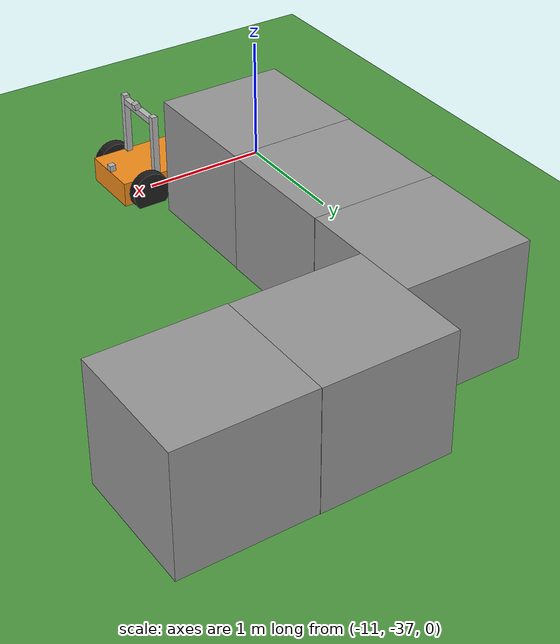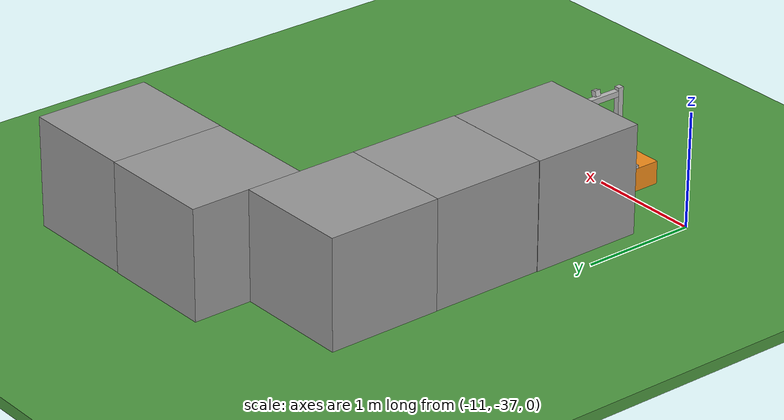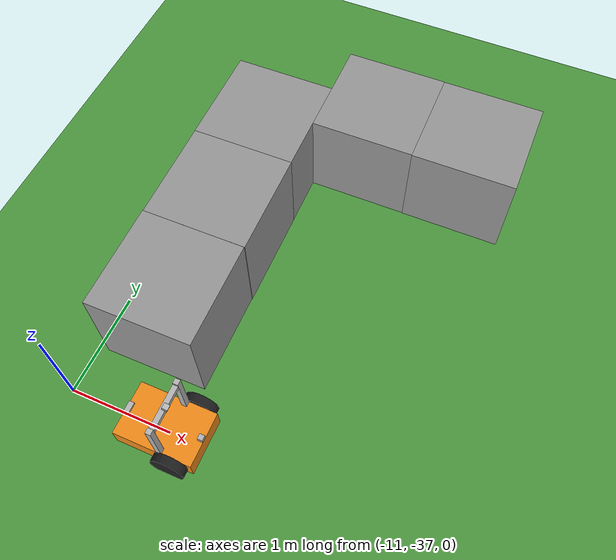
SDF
<sdf version="1.6">
 <world name="IGVC_Advanced_Course">
  <light name="sun" type="directional">
   <pose>0 0 10 0 -0 0</pose>
   <diffuse>0.8 0.8 0.8 1</diffuse>
   <specular>0.2 0.2 0.2 1</specular>
   <attenuation>
    <range>1000</range>
    <constant>0.9</constant>
    <linear>0.01</linear>
    <quadratic>0.001</quadratic>
   </attenuation>
   <direction>-0.5 0.1 -0.9</direction>
  </light>
  <physics name="default_physics" default="0" type="ode">
   <max_step_size>0.001</max_step_size>
   <real_time_factor>1</real_time_factor>
   <real_time_update_rate>1000</real_time_update_rate>
  </physics>
  <scene><ambient>0.4 0.4 0.4 1</ambient><background>0.7 0.7 0.7 1</background><shadows>1</shadows></scene>
  <model name="grasso">
   <static>1</static>
   <link name="link">
    <collision name="collision">
     <max_contacts>4</max_contacts>
     <geometry><plane><normal>0 0 1</normal><size>100 100</size></plane></geometry>
     <surface><friction><ode><mu>100000</mu><mu2>0.7</mu2></ode></friction></surface>
    </collision>
    <visual name="visual">
     <cast_shadows>0</cast_shadows>
     <geometry><plane><normal>0 0 1</normal><size>100 100</size></plane></geometry>
     <material>
      <script>
       <uri>model://grassN/materials/scripts</uri>
       <uri>model://grassN/materials/textures</uri>
       <name>igvc/grass</name>
      </script>
     </material>
    </visual>
   </link>
   <pose>14.1106 -0.146449 0 0 -0 0</pose>
  </model>
  <gravity>0 0 -9.8</gravity>
  <magnetic_field>6e-06 2.3e-05 -4.2e-05</magnetic_field>
  <atmosphere type="adiabatic"/>
  <spherical_coordinates>
   <surface_model>EARTH_WGS84</surface_model>
   <latitude_deg>0</latitude_deg>
   <longitude_deg>0</longitude_deg>
   <elevation>0</elevation>
   <heading_deg>0</heading_deg>
  </spherical_coordinates>
  <model name="grasso">
   <static>1</static>
   <link name="link">
    <collision name="collision">
     <max_contacts>4</max_contacts>
     <geometry><plane><normal>0 0 1</normal><size>100 100</size></plane></geometry>
     <surface><friction><ode><mu>100000</mu><mu2>0.7</mu2></ode></friction></surface>
    </collision>
    <visual name="visual">
     <cast_shadows>0</cast_shadows>
     <geometry><plane><normal>0 0 1</normal><size>100 100</size></plane></geometry>
     <material>
      <script>
       <uri>model://grassN/materials/scripts</uri>
       <uri>model://grassN/materials/textures</uri>
       <name>igvc/grass</name>
      </script>
     </material>
    </visual>
   </link>
   <pose>14.1106 -0.146449 0 0 -0 0</pose>
  </model>
  <audio><device>default</device></audio>
  <model name="ugvbot">
   <link name="footprint">
    <inertial>
     <pose>-0.009261 -0 0.187905 0 -0 0</pose>
     <mass>11.23</mass>
     <inertia>
      <ixx>0.43735</ixx>
      <ixy>2.48971e-19</ixy>
      <ixz>-0.0459209</ixz>
      <iyy>0.741463</iyy>
      <iyz>9.75641e-18</iyz>
      <izz>0.5682</izz>
     </inertia>
    </inertial>
    <collision name="footprint_fixed_joint_lump__chassis_collision">
     <pose>0 0 0.16 0 -0 0</pose>
     <geometry><box><size>0.75 0.5 0.2</size></box></geometry>
    </collision>
    <collision name="footprint_fixed_joint_lump__caster_wheel_collision_1">
     <pose>-0.315 0 0.06 0 -0 0</pose>
     <geometry><sphere><radius>0.06</radius></sphere></geometry>
     <surface>
      <contact><ode><kp>1e+08</kp><kd>0.01</kd></ode></contact>
      <friction><ode><mu>0</mu><mu2>0</mu2></ode></friction>
     </surface>
    </collision>
    <collision name="footprint_fixed_joint_lump__imu_collision_2">
     <pose>-0.35 0 0.2725 0 -0 0</pose>
     <geometry><box><size>0.05 0.1 0.025</size></box></geometry>
    </collision>
    <collision name="footprint_fixed_joint_lump__laser_collision_3">
     <pose>0.35 0 0.285 0 -0 0</pose>
     <geometry><box><size>0.05 0.05 0.05</size></box></geometry>
    </collision>
    <collision name="footprint_fixed_joint_lump__left_mast_collision_4">
     <pose>0.075 0.225 0.51 0 -0 0</pose>
     <geometry><box><size>0.05 0.05 0.5</size></box></geometry>
    </collision>
    <collision name="footprint_fixed_joint_lump__right_mast_collision_5">
     <pose>0.075 -0.225 0.51 0 -0 0</pose>
     <geometry><box><size>0.05 0.05 0.5</size></box></geometry>
    </collision>
    <collision name="footprint_fixed_joint_lump__mast_link_collision_6">
     <pose>0.075 -0 0.711 0 -0 0</pose>
     <geometry><box><size>0.05 0.4 0.05</size></box></geometry>
    </collision>
    <collision name="footprint_fixed_joint_lump__camera_collision_7">
     <pose>0.1 -0 0.76 0 0.261799 0</pose>
     <geometry><box><size>0.05 0.05 0.05</size></box></geometry>
    </collision>
    <visual name="footprint_fixed_joint_lump__chassis_visual">
     <pose>0 0 0.16 0 -0 0</pose>
     <geometry><box><size>0.75 0.5 0.2</size></box></geometry>
     <material>
      <script><name>Gazebo/Orange</name><uri>file://media/materials/scripts/gazebo.material</uri></script>
     </material>
    </visual>
    <visual name="footprint_fixed_joint_lump__caster_wheel_visual_1">
     <pose>-0.315 0 0.06 0 -0 0</pose>
     <geometry><sphere><radius>0.06</radius></sphere></geometry>
     <material>
      <script><name>Gazebo/Grey</name><uri>file://media/materials/scripts/gazebo.material</uri></script>
     </material>
    </visual>
    <visual name="footprint_fixed_joint_lump__imu_visual_2">
     <pose>-0.35 0 0.2725 0 -0 0</pose>
     <geometry><box><size>0.05 0.1 0.025</size></box></geometry>
     <material><script><uri>__default__</uri><name>__default__</name></script></material>
    </visual>
    <visual name="footprint_fixed_joint_lump__laser_visual_3">
     <pose>0.35 0 0.285 0 -0 0</pose>
     <geometry><box><size>0.05 0.05 0.05</size></box></geometry>
     <material><script><uri>__default__</uri><name>__default__</name></script></material>
    </visual>
    <visual name="footprint_fixed_joint_lump__left_mast_visual_4">
     <pose>0.075 0.225 0.51 0 -0 0</pose>
     <geometry><box><size>0.05 0.05 0.5</size></box></geometry>
    </visual>
    <visual name="footprint_fixed_joint_lump__right_mast_visual_5">
     <pose>0.075 -0.225 0.51 0 -0 0</pose>
     <geometry><box><size>0.05 0.05 0.5</size></box></geometry>
    </visual>
    <visual name="footprint_fixed_joint_lump__mast_link_visual_6">
     <pose>0.075 -0 0.71 0 -0 0</pose>
     <geometry><box><size>0.05 0.4 0.05</size></box></geometry>
    </visual>
    <visual name="footprint_fixed_joint_lump__camera_visual_7">
     <pose>0.1 -0 0.76 0 0.261799 0</pose>
     <geometry><box><size>0.05 0.05 0.05</size></box></geometry>
     <material><script><uri>__default__</uri><name>__default__</name></script></material>
    </visual>
    <sensor name="imu_sensor" type="imu">
     <always_on>1</always_on>
     <update_rate>50</update_rate>
     <visualize>1</visualize>
     <plugin name="imu_controller" filename="libgazebo_ros_imu_sensor.so">
      <robotNamespace>/ugvbot</robotNamespace>
      <updateRateHZ>50.0</updateRateHZ>
      <bodyName>footprint</bodyName>
      <topicName>imu_data</topicName>
      <frameName>imu</frameName>
      <accelDrift>0.005 0.005 0.005</accelDrift>
      <accelGaussianNoise>0.005 0.005 0.005</accelGaussianNoise>
      <rateDrift>0.005 0.005 0.005</rateDrift>
      <gaussianNoise>0.005 0.005 0.005</gaussianNoise>
      <headingDrift>0.005</headingDrift>
      <headingGaussianNoise>0.005</headingGaussianNoise>
      <xyzOffset>0 0 0</xyzOffset>
      <rpyOffset>0 0 0</rpyOffset>
     </plugin>
     <pose>-0.35 0 0.2725 0 -0 0</pose>
    </sensor>
    <sensor name="head_hokuyo_sensor" type="ray">
     <visualize>1</visualize>
     <update_rate>20</update_rate>
     <ray>
      <scan>
       <horizontal>
        <samples>360</samples>
        <resolution>1</resolution>
        <min_angle>-1.5708</min_angle>
        <max_angle>1.5708</max_angle>
       </horizontal>
       <vertical><samples>1</samples><min_angle>0</min_angle><max_angle>0</max_angle></vertical>
      </scan>
      <range><min>0.04</min><max>100</max><resolution>0.1</resolution></range>
     </ray>
     <plugin name="gazebo_ros_head_hokuyo_controller" filename="libgazebo_ros_laser.so">
      <topicName>ugvbot/scan</topicName>
      <frameName>laser</frameName>
      <robotNamespace>/</robotNamespace>
     </plugin>
     <pose>0.35 0 0.285 0 -0 0</pose>
    </sensor>
    <sensor name="camera_sensor" type="camera">
     <update_rate>10</update_rate>
     <camera name="__default__">
      <horizontal_fov>1.91986</horizontal_fov>
      <image><width>1280</width><height>720</height><format>R8G8B8</format></image>
      <clip><near>0.05</near><far>30</far></clip>
     </camera>
     <plugin name="camera_controller" filename="libgazebo_ros_camera.so">
      <alwaysOn>1</alwaysOn>
      <updateRate>0.0</updateRate>
      <imageTopicName>ugvbot/image_raw</imageTopicName>
      <cameraInfoTopicName>ugvbot/image_raw/camera_info</cameraInfoTopicName>
      <frameName>camera</frameName>
      <robotNamespace>/</robotNamespace>
     </plugin>
     <pose>0.1 -0 0.76 0 0.261799 0</pose>
    </sensor>
   </link>
   <link name="left_wheel">
    <pose>0.175 0.29 0.16 0 -0 0</pose>
    <inertial>
     <pose>0 0 0.0001 1.57079 1.57079 3.14159</pose>
     <mass>2.5</mass>
     <inertia>
      <ixx>0.0173333</ixx>
      <ixy>0</ixy>
      <ixz>0</ixz>
      <iyy>0.0173333</iyy>
      <iyz>0</iyz>
      <izz>0.032</izz>
     </inertia>
    </inertial>
    <collision name="left_wheel_collision">
     <pose>0 0 0.0001 3.14159 1.57079 -1.57079</pose>
     <geometry><cylinder><length>0.08</length><radius>0.16</radius></cylinder></geometry>
     <surface>
      <contact><ode><kp>1e+07</kp><kd>0.01</kd></ode></contact>
      <friction><ode><mu>1000</mu><mu2>1000</mu2></ode></friction>
     </surface>
    </collision>
    <visual name="left_wheel_visual">
     <pose>0 0 0.0001 3.14159 1.57079 -1.57079</pose>
     <geometry><cylinder><length>0.08</length><radius>0.16</radius></cylinder></geometry>
     <material>
      <script><name>Gazebo/Black</name><uri>file://media/materials/scripts/gazebo.material</uri></script>
     </material>
    </visual>
   </link>
   <joint name="left_wheel_hinge" type="revolute">
    <child>left_wheel</child>
    <parent>footprint</parent>
    <axis>
     <xyz>0 1 0</xyz>
     <limit><lower>-1e+16</lower><upper>1e+16</upper></limit>
     <dynamics><spring_reference>0</spring_reference><spring_stiffness>0</spring_stiffness></dynamics>
     <use_parent_model_frame>1</use_parent_model_frame>
    </axis>
   </joint>
   <link name="right_wheel">
    <pose>0.175 -0.29 0.16 0 -0 0</pose>
    <inertial>
     <pose>0 0 0.0001 1.57079 1.57079 3.14159</pose>
     <mass>2.5</mass>
     <inertia>
      <ixx>0.0173333</ixx>
      <ixy>0</ixy>
      <ixz>0</ixz>
      <iyy>0.0173333</iyy>
      <iyz>0</iyz>
      <izz>0.032</izz>
     </inertia>
    </inertial>
    <collision name="right_wheel_collision">
     <pose>0 0 0.0001 3.14159 1.57079 -1.57079</pose>
     <geometry><cylinder><length>0.08</length><radius>0.16</radius></cylinder></geometry>
     <surface>
      <contact><ode><kp>1e+07</kp><kd>0.01</kd></ode></contact>
      <friction><ode><mu>1000</mu><mu2>1000</mu2></ode></friction>
     </surface>
    </collision>
    <visual name="right_wheel_visual">
     <pose>0 0 0.0001 3.14159 1.57079 -1.57079</pose>
     <geometry><cylinder><length>0.08</length><radius>0.16</radius></cylinder></geometry>
     <material>
      <script><name>Gazebo/Black</name><uri>file://media/materials/scripts/gazebo.material</uri></script>
     </material>
    </visual>
   </link>
   <joint name="right_wheel_hinge" type="revolute">
    <child>right_wheel</child>
    <parent>footprint</parent>
    <axis>
     <xyz>0 1 0</xyz>
     <limit><lower>-1e+16</lower><upper>1e+16</upper></limit>
     <dynamics><spring_reference>0</spring_reference><spring_stiffness>0</spring_stiffness></dynamics>
     <use_parent_model_frame>1</use_parent_model_frame>
    </axis>
   </joint>
   <static>0</static>
   <plugin name="gazebo_ros_control" filename="libgazebo_ros_control.so">
    <robotNamespace>/ugvbot</robotNamespace>
    <legacyModeNS>1</legacyModeNS>
    <robotSimType>gazebo_ros_control/DefaultRobotHWSim</robotSimType>
   </plugin>
   <pose>-10 -37.0003 -6.5e-05 0 0.000207 0.001957</pose>
  </model>
  <model name="unit_box">
   <pose>-10.3959 -36.0363 0.5 0 -0 0.006982</pose>
   <link name="link">
    <inertial>
     <mass>1</mass>
     <inertia>
      <ixx>0.166667</ixx>
      <ixy>0</ixy>
      <ixz>0</ixz>
      <iyy>0.166667</iyy>
      <iyz>0</iyz>
      <izz>0.166667</izz>
     </inertia>
    </inertial>
    <collision name="collision"><geometry><box><size>1 1 1</size></box></geometry></collision>
    <visual name="visual">
     <geometry><box><size>1 1 1</size></box></geometry>
     <material>
      <script><name>Gazebo/Grey</name><uri>file://media/materials/scripts/gazebo.material</uri></script>
     </material>
    </visual>
   </link>
  </model>
  <model name="unit_box_0">
   <pose>-10.3984 -35.0362 0.499995 -1e-05 -0 0.007152</pose>
   <link name="link">
    <inertial>
     <mass>1</mass>
     <inertia>
      <ixx>0.166667</ixx>
      <ixy>0</ixy>
      <ixz>0</ixz>
      <iyy>0.166667</iyy>
      <iyz>0</iyz>
      <izz>0.166667</izz>
     </inertia>
    </inertial>
    <collision name="collision"><geometry><box><size>1 1 1</size></box></geometry></collision>
    <visual name="visual">
     <geometry><box><size>1 1 1</size></box></geometry>
     <material>
      <script><name>Gazebo/Grey</name><uri>file://media/materials/scripts/gazebo.material</uri></script>
     </material>
    </visual>
   </link>
  </model>
  <model name="unit_box_1">
   <pose>-10.4075 -34.0362 0.5 0 -0 0.007205</pose>
   <link name="link">
    <inertial>
     <mass>1</mass>
     <inertia>
      <ixx>0.166667</ixx>
      <ixy>0</ixy>
      <ixz>0</ixz>
      <iyy>0.166667</iyy>
      <iyz>0</iyz>
      <izz>0.166667</izz>
     </inertia>
    </inertial>
    <collision name="collision"><geometry><box><size>1 1 1</size></box></geometry></collision>
    <visual name="visual">
     <geometry><box><size>1 1 1</size></box></geometry>
     <material>
      <script><name>Gazebo/Grey</name><uri>file://media/materials/scripts/gazebo.material</uri></script>
     </material>
    </visual>
   </link>
  </model>
  <model name="unit_box_2">
   <pose>-9.41122 -33.5139 0.499995 0 -1e-05 0.007131</pose>
   <link name="link">
    <inertial>
     <mass>1</mass>
     <inertia>
      <ixx>0.166667</ixx>
      <ixy>0</ixy>
      <ixz>0</ixz>
      <iyy>0.166667</iyy>
      <iyz>0</iyz>
      <izz>0.166667</izz>
     </inertia>
    </inertial>
    <collision name="collision"><geometry><box><size>1 1 1</size></box></geometry></collision>
    <visual name="visual">
     <geometry><box><size>1 1 1</size></box></geometry>
     <material>
      <script><name>Gazebo/Grey</name><uri>file://media/materials/scripts/gazebo.material</uri></script>
     </material>
    </visual>
   </link>
  </model>
  <model name="unit_box_3">
   <pose>-8.41122 -33.5101 0.499995 0 1e-05 0.007131</pose>
   <link name="link">
    <inertial>
     <mass>1</mass>
     <inertia>
      <ixx>0.166667</ixx>
      <ixy>0</ixy>
      <ixz>0</ixz>
      <iyy>0.166667</iyy>
      <iyz>0</iyz>
      <izz>0.166667</izz>
     </inertia>
    </inertial>
    <collision name="collision"><geometry><box><size>1 1 1</size></box></geometry></collision>
    <visual name="visual">
     <geometry><box><size>1 1 1</size></box></geometry>
     <material>
      <script><name>Gazebo/Grey</name><uri>file://media/materials/scripts/gazebo.material</uri></script>
     </material>
    </visual>
   </link>
  </model>
 </world>
</sdf>
